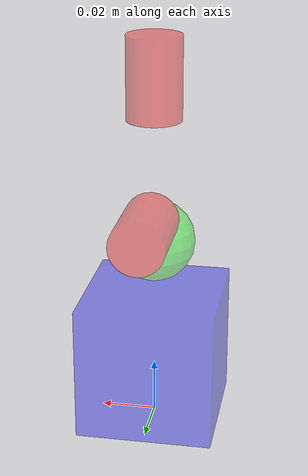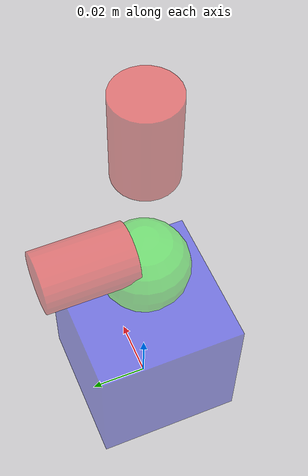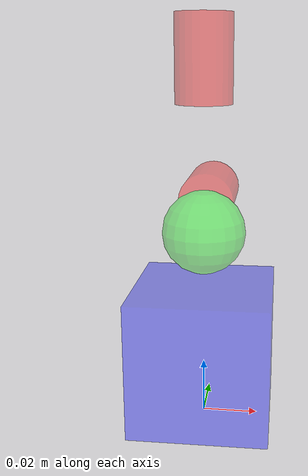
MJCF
<mujoco model="contact_surface_demo">
  <option collision="all" timestep="0.001" gravity="0 0 -0" cone="elliptic" />
  <statistic extent="1.5" meansize=".05" />
  <option timestep="0.001" jacobian="sparse" gravity="0 0 0" />
  <size nconmax="3000" njmax="4000" />
  <visual>
    <rgba haze="0.15 0.25 0.35 1" />
    <quality shadowsize="4096" />
    <map stiffness="700" shadowscale="0.5" fogstart="10" fogend="15" zfar="40" haze="0.3" />
    <scale forcewidth="0.001" />
  </visual>

  <custom>
    <!-- All custom parameters related to contact surfaces have the prefix cs:: -->
    <text name="cs::HydroelasticContactRepresentation" data="kTriangle" />
    <numeric name="cs::VisualizeSurfaces" data="1" />
    <!-- If cs::ApplyContactSurfaceForces is 0 Contact Surfaces are only computed for tactile
      sensors and standard mujoco contacts are used to compute physics -->
    <numeric name="cs::ApplyContactSurfaceForces" data="0" />
    <numeric name="cs::box_geom" data="2.5e6 5.0 0 0.0 0.0" />
    <numeric name="cs::sphere_geom" data="5e2 0.1 0.005 0.3 0.3" />
    <numeric name="cs::cylinder0_geom" data="5e2 0.1 0.01 1 1" />
    <numeric name="cs::cylinder1_geom" data="5e2 0.1 0.01 1 1" />

  </custom>

  <visual>
    <headlight ambient="0.4 0.4 0.4" diffuse="0.4 0.4 0.4" specular="0.0 0.0 0.0" active="1" />
  </visual>

  <asset>
    <texture type="skybox" builtin="gradient" rgb1="1 1 1" rgb2="1 1 1" width="512"
      height="512" />
  </asset>

  <worldbody>
    <body name="box_body">
      <geom name="box_geom" type="box" pos="0 0 0.025" size="0.025 0.025 0.025"
        rgba="0.0 0.0 1.0 0.4" />
    </body>

    <body name="cylinder0_body">
      <geom name="cylinder0_geom" type="cylinder" pos="0 0 0.13" size="0.01 0.015"
        rgba="1.0 0.0 0.0 0.4" />
    </body>

    <body name="cylinder1_body">
      <geom name="cylinder1_geom" type="cylinder" pos="0 0.02 0.08" size="0.01 0.015" euler="90 0 0"
        rgba="1.0 0.0 0.0 0.4" />
    </body>

    <body name="sphere_body" pos="0 0 0.07">
      <joint type="slide" />
      <geom name="sphere_geom" type="sphere" rgba="0.0 1.0 0.0 0.4" size="0.015" />
    </body>

    <body name="mocap" mocap="true" pos="0 0 0.07">
      <geom type="sphere" size="0.02" rgba="0.0 0 0 0.000001" contype="0" conaffinity="0"/>
    </body>

  </worldbody>

  <equality>
    <weld body1="mocap" body2="sphere_body" active="true" />
  </equality>

</mujoco>
